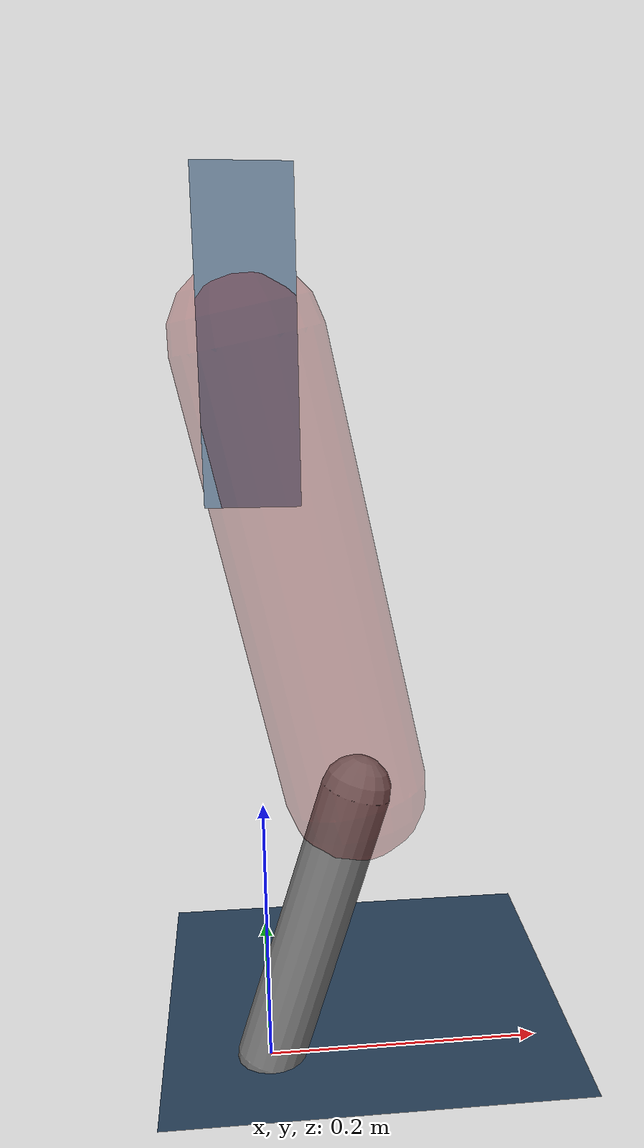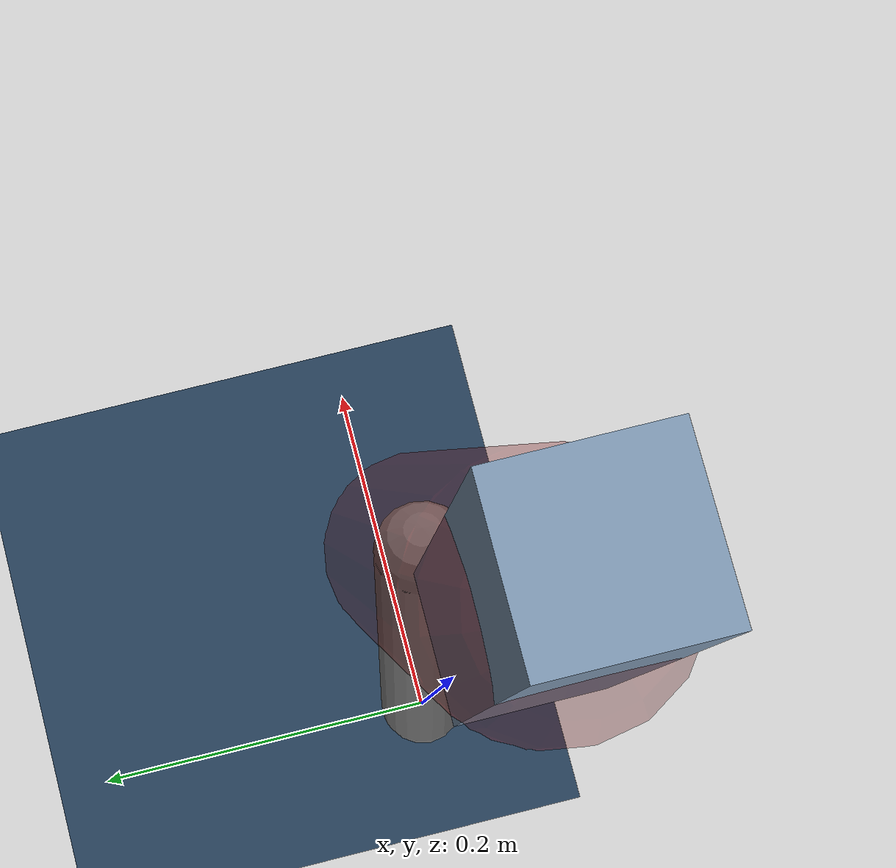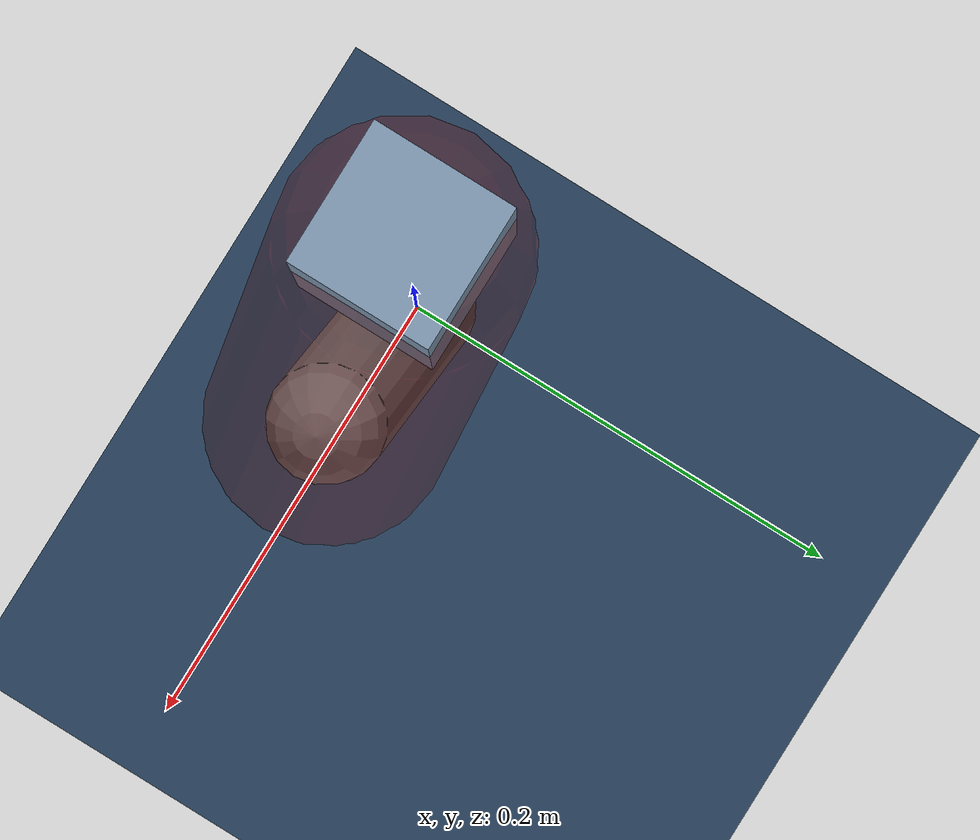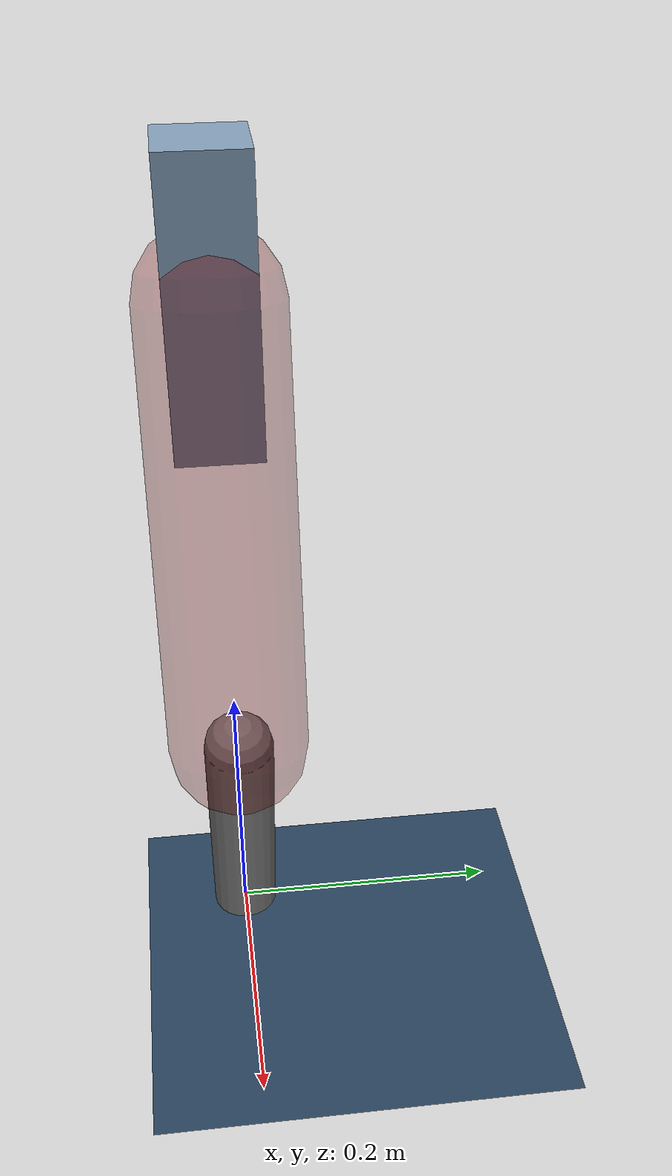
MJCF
<mujoco model="Hopper2D">
	<compiler inertiafromgeom="true" angle="radian" />
	<option timestep="0.001" integrator="implicit" cone="elliptic" solver="Newton" tolerance="1e-10" />

	<default>
		<geom contype="1" conaffinity="1" condim="3" friction="2 0.005 0.0001" solref="0.005 1" />
		<joint limited="true" damping="0.1" />
	</default>

	<asset>
		<texture name="skybox" type="skybox" builtin="gradient" rgb1=".4 .6 .8" rgb2="0 0 0" width="800" height="800" />
		<texture name="grid" type="2d" builtin="checker" rgb1=".1 .2 .3" rgb2=".2 .3 .4" width="300" height="300" mark="edge" markrgb=".2 .3 .4" />
		<material name="ground" texture="grid" texrepeat="1 1" texuniform="true" reflectance="0.1" />
		<material name="leg" rgba="0.5 0.6 0.7 1" />
	</asset>

	<worldbody>

		<geom name="floor" type="plane" size="5 5 0.25" material="ground" />

		<light directional="false" diffuse="0.8 0.8 0.8" specular="0.3 0.3 0.3" pos="0 0 2" dir="0 0 -1" />
		<light mode="targetbodycom" target="base" directional="false" diffuse="0.8 0.8 0.8" specular="0.3 0.3 0.3" pos="0 0 2" dir="0 0 -1" />

		<camera name="fixed" pos="0 -2 1" xyaxes="1 0 0 0 0 1" />
		<camera name="tracking" mode="trackcom" pos="0 -3 1" />

		<body name="root" pos="0 0 0.5138795082048453">
			<joint name="slide_x" type="slide" axis="1 0 0" range="-100 100" />
			<joint name="slide_z" type="slide" axis="0 0 1" range="0 10" />

			<body name="base" pos="0 0 0">
				<geom name="torso" type="box" size="0.03 0.03 0.1" mass="2.941" material="leg" />

				<body name="link1" pos="0 0 0" euler="0 1.3600982719114587 0">
					<joint type="hinge" axis="0 -1 0" pos="0 0 0" name="hinge1" limited="true" range="-3.14 3.14" stiffness="0" damping="0.1" />
					<geom name="thigh" type="capsule" fromto="0 0 0 0.31180045372006415 0 0" size="0.05" rgba="0.5 0 0 0.3" mass="1.0207612250441733" />

					<body name="link2" pos="0.31180045372006415 0 0" euler="0 0.5131740566896228 0">
						<joint type="hinge" axis="0 -1 0" pos="0 0 0" name="hinge2" limited="true" range="-3.14 3.14" stiffness="0" damping="0.1" />
						<geom name="shank" type="capsule" fromto="0 0 0 0.21891270270597557 0 0" size="0.025" mass="0.4167301621647805" />

					</body>
				</body>
			</body>
		</body>
	</worldbody>

	<actuator>
		<motor name="torque1" joint="hinge1" ctrlrange="-72.22043072922001 72.22043072922001" ctrllimited="true" gear="1" />
		<motor name="torque2" joint="hinge2" ctrlrange="-105.42195834580465 105.42195834580465" ctrllimited="true" gear="1" />
	</actuator>
</mujoco>
